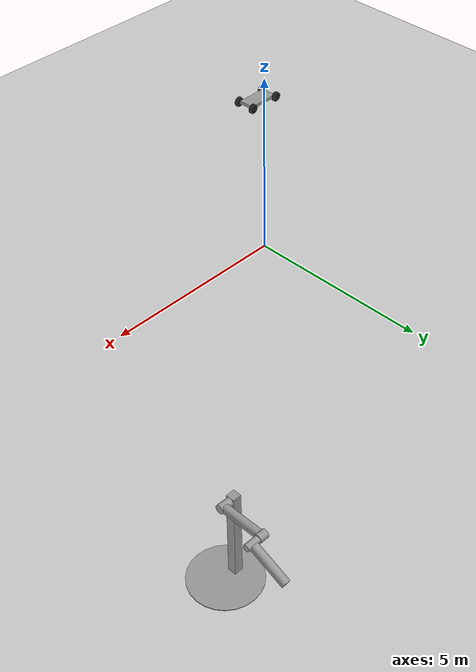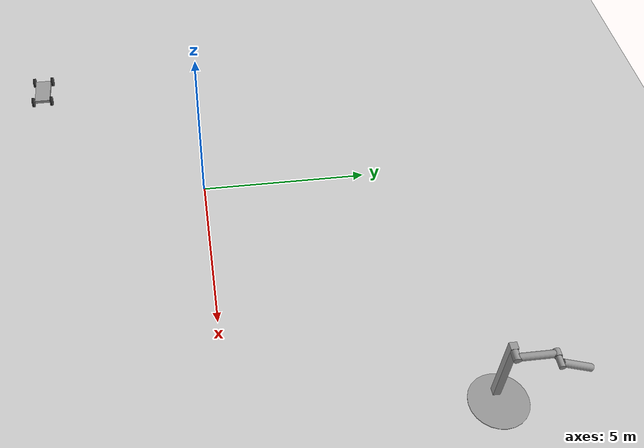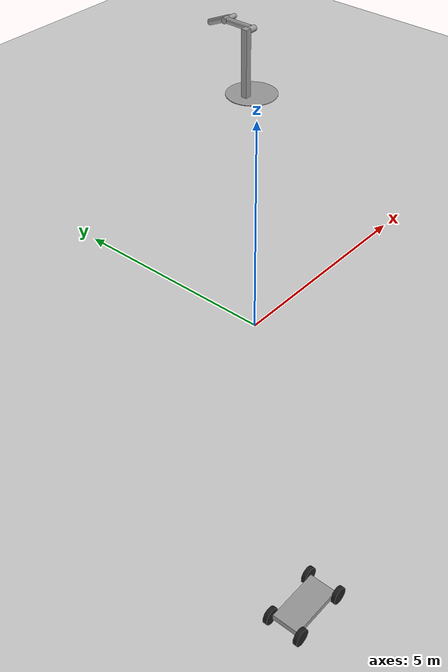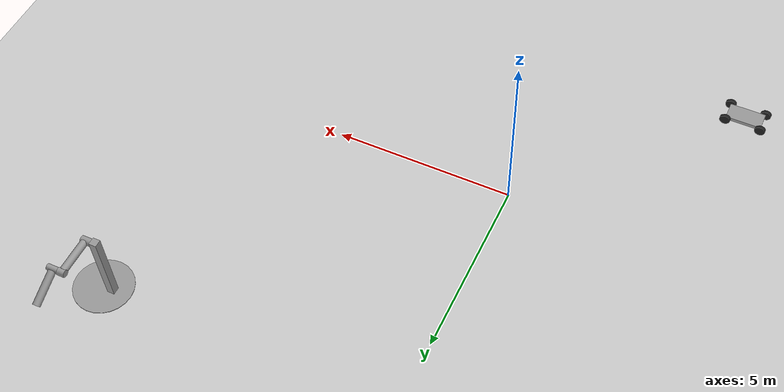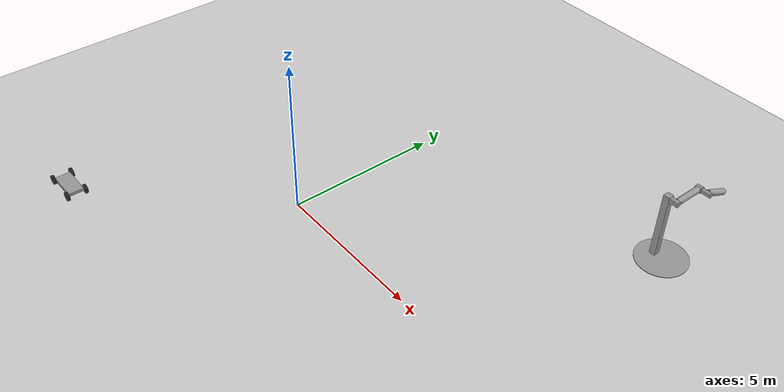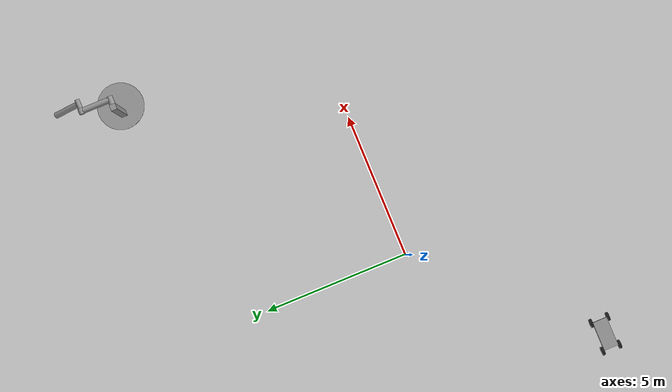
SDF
<sdf version="1.6">
 <world name="default">
  <light name="sun" type="directional">
   <cast_shadows>0</cast_shadows>
   <pose>0 0 10 0 -0 0</pose>
   <diffuse>0.8 0.8 0.8 1</diffuse>
   <specular>0.1 0.1 0.1 1</specular>
   <attenuation>
    <range>1000</range>
    <constant>0.9</constant>
    <linear>0.01</linear>
    <quadratic>0.001</quadratic>
   </attenuation>
   <direction>-0.5 0.5 -1</direction>
  </light>
  <model name="ground_plane">
   <static>1</static>
   <link name="link">
    <collision name="collision">
     <geometry><plane><normal>0 0 1</normal><size>100 100</size></plane></geometry>
     <surface><friction><ode><mu>100</mu><mu2>50</mu2></ode></friction></surface>
    </collision>
    <visual name="visual">
     <cast_shadows>0</cast_shadows>
     <geometry><plane><normal>0 0 1</normal><size>100 100</size></plane></geometry>
     <material>
      <script><uri>file://media/materials/scripts/gazebo.material</uri><name>Gazebo/Grey</name></script>
     </material>
    </visual>
   </link>
  </model>
  <gravity>0 0 -9.8</gravity>
  <magnetic_field>6e-06 2.3e-05 -4.2e-05</magnetic_field>
  <atmosphere type="adiabatic"/>
  <physics name="default_physics" default="0" type="ode">
   <max_step_size>0.001</max_step_size>
   <real_time_factor>1</real_time_factor>
   <real_time_update_rate>1000</real_time_update_rate>
  </physics>
  <scene><ambient>0.4 0.4 0.4 1</ambient><background>0.7 0.7 0.7 1</background><shadows>1</shadows></scene>
  <spherical_coordinates>
   <surface_model>EARTH_WGS84</surface_model>
   <latitude_deg>0</latitude_deg>
   <longitude_deg>0</longitude_deg>
   <elevation>0</elevation>
   <heading_deg>0</heading_deg>
  </spherical_coordinates>
  <model name="cart_front_steer">
   <link name="chassis">
    <pose>0 0 0.15 0 -0 0</pose>
    <inertial>
     <pose>0.1 0 0 0 -0 0</pose>
     <mass>10</mass>
     <inertia>
      <ixx>0.216667</ixx>
      <iyy>0.841667</iyy>
      <izz>1.04167</izz>
      <ixy>0</ixy>
      <ixz>0</ixz>
      <iyz>0</iyz>
     </inertia>
    </inertial>
    <collision name="collision"><geometry><box><size>1 0.5 0.1</size></box></geometry></collision>
    <visual name="visual">
     <geometry><box><size>1 0.5 0.1</size></box></geometry>
     <material>
      <script><uri>file://media/materials/scripts/gazebo.material</uri><name>Gazebo/Grey</name></script>
     </material>
    </visual>
   </link>
   <link name="wheel_front_left">
    <pose>0.5 0.298 0.15 -1.5708 -0.087266 0</pose>
    <inertial>
     <mass>0.5</mass>
     <inertia>
      <ixx>0.00307917</ixx>
      <iyy>0.00307917</iyy>
      <izz>0.005625</izz>
      <ixy>0</ixy>
      <ixz>0</ixz>
      <iyz>0</iyz>
     </inertia>
    </inertial>
    <collision name="collision">
     <geometry><cylinder><radius>0.15</radius><length>0.08</length></cylinder></geometry>
    </collision>
    <visual name="visual">
     <geometry><cylinder><radius>0.15</radius><length>0.08</length></cylinder></geometry>
     <material>
      <script><uri>file://media/materials/scripts/gazebo.material</uri><name>Gazebo/Black</name></script>
     </material>
    </visual>
   </link>
   <joint name="wheel_front_left_steer_spin" type="universal">
    <parent>chassis</parent>
    <child>wheel_front_left</child>
    <axis>
     <xyz>0 -1 0</xyz>
     <limit><lower>-0.610865</lower><upper>0.610865</upper></limit>
     <use_parent_model_frame>0</use_parent_model_frame>
     <dynamics><spring_reference>0</spring_reference><spring_stiffness>0</spring_stiffness></dynamics>
    </axis>
    <axis2>
     <xyz>0 0 1</xyz>
     <use_parent_model_frame>0</use_parent_model_frame>
     <dynamics><spring_reference>0</spring_reference><spring_stiffness>0</spring_stiffness></dynamics>
    </axis2>
   </joint>
   <link name="wheel_front_right">
    <pose>0.5 -0.298 0.15 -1.5708 -0.087266 0</pose>
    <inertial>
     <mass>0.5</mass>
     <inertia>
      <ixx>0.00307917</ixx>
      <iyy>0.00307917</iyy>
      <izz>0.005625</izz>
      <ixy>0</ixy>
      <ixz>0</ixz>
      <iyz>0</iyz>
     </inertia>
    </inertial>
    <collision name="collision">
     <geometry><cylinder><radius>0.15</radius><length>0.08</length></cylinder></geometry>
    </collision>
    <visual name="visual">
     <geometry><cylinder><radius>0.15</radius><length>0.08</length></cylinder></geometry>
     <material>
      <script><uri>file://media/materials/scripts/gazebo.material</uri><name>Gazebo/Black</name></script>
     </material>
    </visual>
   </link>
   <joint name="wheel_front_right_steer_spin" type="universal">
    <parent>chassis</parent>
    <child>wheel_front_right</child>
    <axis>
     <xyz>0 -1 0</xyz>
     <limit><lower>-0.610865</lower><upper>0.610865</upper></limit>
     <use_parent_model_frame>0</use_parent_model_frame>
     <dynamics><spring_reference>0</spring_reference><spring_stiffness>0</spring_stiffness></dynamics>
    </axis>
    <axis2>
     <xyz>0 0 1</xyz>
     <use_parent_model_frame>0</use_parent_model_frame>
     <dynamics><spring_reference>0</spring_reference><spring_stiffness>0</spring_stiffness></dynamics>
    </axis2>
   </joint>
   <link name="wheel_rear_left">
    <pose>-0.5 0.298 0.15 -1.5708 0 0</pose>
    <inertial>
     <mass>0.5</mass>
     <inertia>
      <ixx>0.00307917</ixx>
      <iyy>0.00307917</iyy>
      <izz>0.005625</izz>
      <ixy>0</ixy>
      <ixz>0</ixz>
      <iyz>0</iyz>
     </inertia>
    </inertial>
    <collision name="collision">
     <geometry><cylinder><radius>0.15</radius><length>0.08</length></cylinder></geometry>
    </collision>
    <visual name="visual">
     <geometry><cylinder><radius>0.15</radius><length>0.08</length></cylinder></geometry>
     <material>
      <script><uri>file://media/materials/scripts/gazebo.material</uri><name>Gazebo/Black</name></script>
     </material>
    </visual>
   </link>
   <joint name="wheel_rear_left_spin" type="revolute">
    <parent>chassis</parent>
    <child>wheel_rear_left</child>
    <axis>
     <xyz>0 0 1</xyz>
     <use_parent_model_frame>0</use_parent_model_frame>
     <limit><lower>-1e+16</lower><upper>1e+16</upper></limit>
     <dynamics><spring_reference>0</spring_reference><spring_stiffness>0</spring_stiffness></dynamics>
    </axis>
   </joint>
   <link name="wheel_rear_right">
    <pose>-0.5 -0.298 0.15 -1.5708 0 0</pose>
    <inertial>
     <mass>0.5</mass>
     <inertia>
      <ixx>0.00307917</ixx>
      <iyy>0.00307917</iyy>
      <izz>0.005625</izz>
      <ixy>0</ixy>
      <ixz>0</ixz>
      <iyz>0</iyz>
     </inertia>
    </inertial>
    <collision name="collision">
     <geometry><cylinder><radius>0.15</radius><length>0.08</length></cylinder></geometry>
    </collision>
    <visual name="visual">
     <geometry><cylinder><radius>0.15</radius><length>0.08</length></cylinder></geometry>
     <material>
      <script><uri>file://media/materials/scripts/gazebo.material</uri><name>Gazebo/Black</name></script>
     </material>
    </visual>
   </link>
   <joint name="wheel_rear_right_spin" type="revolute">
    <parent>chassis</parent>
    <child>wheel_rear_right</child>
    <axis>
     <xyz>0 0 1</xyz>
     <use_parent_model_frame>0</use_parent_model_frame>
     <limit><lower>-1e+16</lower><upper>1e+16</upper></limit>
     <dynamics><spring_reference>0</spring_reference><spring_stiffness>0</spring_stiffness></dynamics>
    </axis>
   </joint>
   <pose>-4.9983 -5.15132 -2e-06 -1.6e-05 -1e-06 0.002779</pose>
  </model>
  <model name="double_pendulum_with_base">
   <link name="base">
    <inertial>
     <mass>100</mass>
     <inertia><ixx>1</ixx><ixy>0</ixy><ixz>0</ixz><iyy>1</iyy><iyz>0</iyz><izz>1</izz></inertia>
    </inertial>
    <visual name="vis_plate_on_ground">
     <pose>0 0 0.01 0 -0 0</pose>
     <geometry><cylinder><radius>0.8</radius><length>0.02</length></cylinder></geometry>
     <material>
      <script><uri>file://media/materials/scripts/gazebo.material</uri><name>Gazebo/Grey</name></script>
     </material>
    </visual>
    <visual name="vis_pole">
     <pose>-0.275 0 1.1 0 -0 0</pose>
     <geometry><box><size>0.2 0.2 2.2</size></box></geometry>
     <material>
      <script><uri>file://media/materials/scripts/gazebo.material</uri><name>Gazebo/Grey</name></script>
     </material>
    </visual>
    <collision name="col_plate_on_ground">
     <pose>0 0 0.01 0 -0 0</pose>
     <geometry><cylinder><radius>0.8</radius><length>0.02</length></cylinder></geometry>
    </collision>
    <collision name="col_pole">
     <pose>-0.275 0 1.1 0 -0 0</pose>
     <geometry><box><size>0.2 0.2 2.2</size></box></geometry>
    </collision>
   </link>
   <link name="upper_link">
    <pose>0 0 2.1 -1.5708 0 0</pose>
    <inertial>
     <pose>0 0 0.5 0 -0 0</pose>
     <inertia><ixx>1</ixx><ixy>0</ixy><ixz>0</ixz><iyy>1</iyy><iyz>0</iyz><izz>1</izz></inertia>
     <mass>1</mass>
    </inertial>
    <visual name="vis_upper_joint">
     <pose>-0.05 0 0 3.14159 1.57079 3.14159</pose>
     <geometry><cylinder><radius>0.1</radius><length>0.3</length></cylinder></geometry>
     <material>
      <script><uri>file://media/materials/scripts/gazebo.material</uri><name>Gazebo/Grey</name></script>
     </material>
    </visual>
    <visual name="vis_lower_joint">
     <pose>0 0 1 3.14159 1.57079 3.14159</pose>
     <geometry><cylinder><radius>0.1</radius><length>0.2</length></cylinder></geometry>
     <material>
      <script><uri>file://media/materials/scripts/gazebo.material</uri><name>Gazebo/Grey</name></script>
     </material>
    </visual>
    <visual name="vis_cylinder">
     <pose>0 0 0.5 0 -0 0</pose>
     <geometry><cylinder><radius>0.1</radius><length>0.9</length></cylinder></geometry>
     <material>
      <script><uri>file://media/materials/scripts/gazebo.material</uri><name>Gazebo/Grey</name></script>
     </material>
    </visual>
    <collision name="col_upper_joint">
     <pose>-0.05 0 0 3.14159 1.57079 3.14159</pose>
     <geometry><cylinder><radius>0.1</radius><length>0.3</length></cylinder></geometry>
    </collision>
    <collision name="col_lower_joint">
     <pose>0 0 1 3.14159 1.57079 3.14159</pose>
     <geometry><cylinder><radius>0.1</radius><length>0.2</length></cylinder></geometry>
    </collision>
    <collision name="col_cylinder">
     <pose>0 0 0.5 0 -0 0</pose>
     <geometry><cylinder><radius>0.1</radius><length>0.9</length></cylinder></geometry>
    </collision>
   </link>
   <link name="lower_link">
    <pose>0.25 1 2.1 -2 0 0</pose>
    <inertial>
     <pose>0 0 0.5 0 -0 0</pose>
     <inertia><ixx>1</ixx><ixy>0</ixy><ixz>0</ixz><iyy>1</iyy><iyz>0</iyz><izz>1</izz></inertia>
     <mass>1</mass>
    </inertial>
    <visual name="vis_lower_joint">
     <pose>0 0 0 3.14159 1.57079 3.14159</pose>
     <geometry><cylinder><radius>0.08</radius><length>0.3</length></cylinder></geometry>
     <material>
      <script><uri>file://media/materials/scripts/gazebo.material</uri><name>Gazebo/Grey</name></script>
     </material>
    </visual>
    <visual name="vis_cylinder">
     <pose>0 0 0.5 0 -0 0</pose>
     <geometry><cylinder><radius>0.1</radius><length>0.9</length></cylinder></geometry>
     <material>
      <script><uri>file://media/materials/scripts/gazebo.material</uri><name>Gazebo/Grey</name></script>
     </material>
    </visual>
    <collision name="col_lower_joint">
     <pose>0 0 0 3.14159 1.57079 3.14159</pose>
     <geometry><cylinder><radius>0.08</radius><length>0.3</length></cylinder></geometry>
    </collision>
    <collision name="col_cylinder">
     <pose>0 0 0.5 0 -0 0</pose>
     <geometry><cylinder><radius>0.1</radius><length>0.9</length></cylinder></geometry>
    </collision>
   </link>
   <joint name="upper_joint" type="revolute">
    <parent>base</parent>
    <child>upper_link</child>
    <axis>
     <xyz>1 0 0</xyz>
     <use_parent_model_frame>0</use_parent_model_frame>
     <limit><lower>-1e+16</lower><upper>1e+16</upper></limit>
     <dynamics><spring_reference>0</spring_reference><spring_stiffness>0</spring_stiffness></dynamics>
    </axis>
   </joint>
   <joint name="lower_joint" type="revolute">
    <parent>upper_link</parent>
    <child>lower_link</child>
    <axis>
     <xyz>1 0 0</xyz>
     <use_parent_model_frame>0</use_parent_model_frame>
     <limit><lower>-1e+16</lower><upper>1e+16</upper></limit>
     <dynamics><spring_reference>0</spring_reference><spring_stiffness>0</spring_stiffness></dynamics>
    </axis>
   </joint>
   <pose>8.27414 6.93988 0 0 0 -0.000828</pose>
  </model>
 </world>
</sdf>
